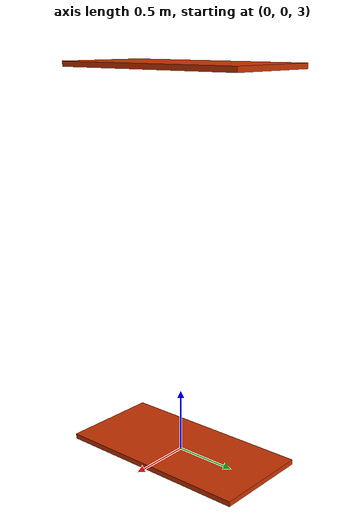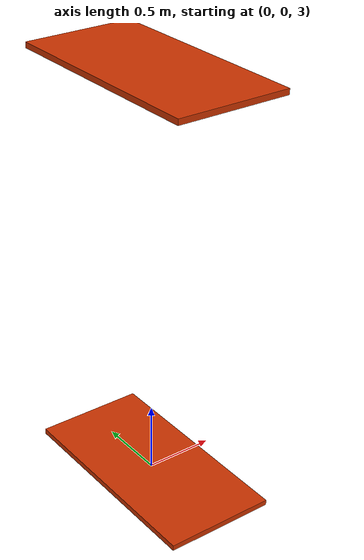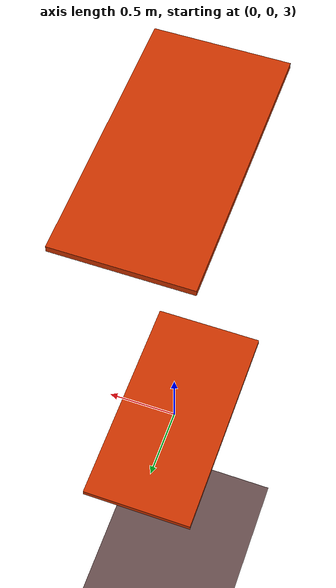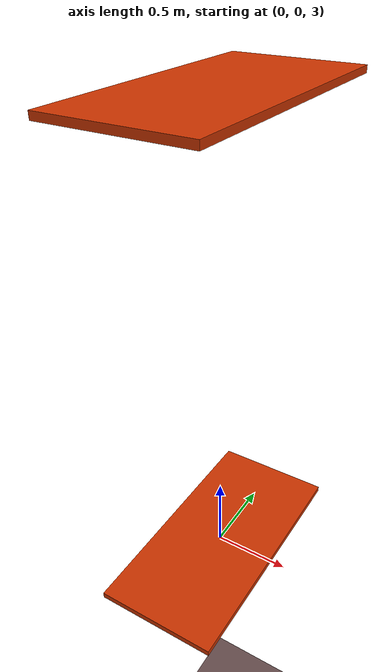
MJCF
<!--
Quadrotor with `+` configuration.
Front: Along body X-axis
-->

<mujoco model="quadrotorplus">
    <compiler angle="degree" inertiafromgeom="true" coordinate="local"/>
    <option	timestep="0.01" gravity="0 0 -9.81" density="1" viscosity="1e-5" integrator="RK4"/>

    <default>
        <joint armature="1" damping="1" limited="true"/>
        <geom conaffinity="0" condim="3" density="5.0" friction="1 0.5 0.5" margin="0.01" rgba="0.8 0.6 0.4 1"/>
    </default>

    <asset>
        <texture builtin="gradient" type="skybox" height="100" width="100" rgb1="1 1 1" rgb2="0 0 0"/>
        <texture name="texgeom" builtin="flat" height="1278" mark="cross" markrgb="1 1 1" random="0.01" rgb1="0.8 0.6 0.4" rgb2="0.8 0.6 0.4" type="cube" width="127"/>
        <texture name="texplane" builtin="checker" height="100" width="100" rgb1="0 0 0" rgb2="0.8 0.8 0.8" type="2d"/>
        <material name="MatPlane" reflectance="0.5" shininess="1" specular="1" texrepeat="60 60" texture="texplane"/>
        <material name="geom" texture="texgeom" texuniform="true"/>
    </asset>

    <worldbody>
        <light cutoff="100" diffuse="1 1 1" dir="-0 0 -1.3" directional="true" exponent="1" pos="0 0 1.3" specular=".1 .1 .1"/>
        <geom conaffinity="1" condim="3" material="MatPlane" name="floor" pos="0 0 0" rgba="0.4 0.3 0.3 1" size="5 5 0.2" type="plane"/>
        <body name="core" pos="0 0 3" >
            <geom name="core_geom" type="box" pos="0 0 0" quat="1 0 0 0" size=".4 .8 .02" rgba=".8 .2 0 1" mass=".1"/>
            <joint name="root" type="free" damping="0" armature="0" pos="0 0 0" limited="false"/>
            <body name="core1" pos="0 0 3" >
                <geom name="core_geom1" type="box" pos="0 0 0" quat="1 0 0 0" size=".4 .8 .02" rgba=".8 .2 0 1" mass=".1"/>
            <joint name="root1" type="slide" axis="0 1 0" damping="0" armature="0" pos="0 0 0" limited="false"/>
        </body>
        </body>
    </worldbody>
</mujoco>
